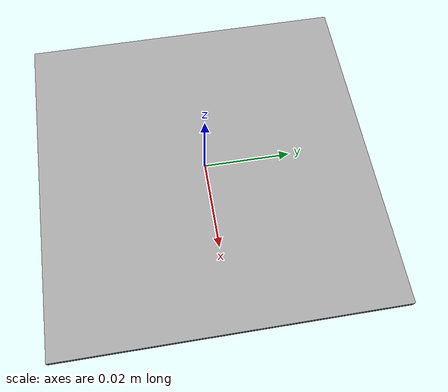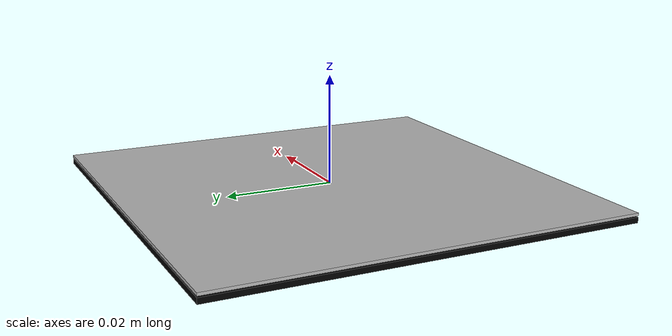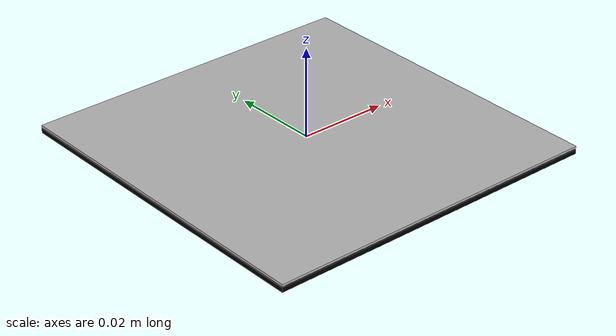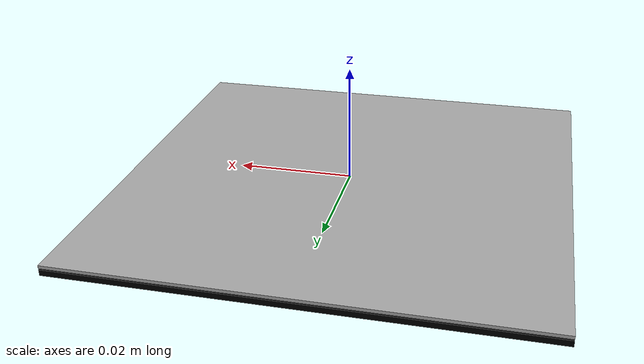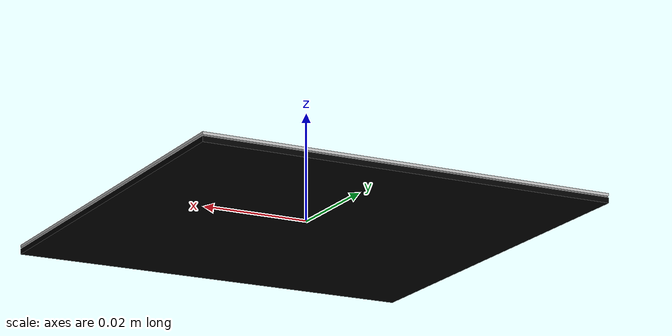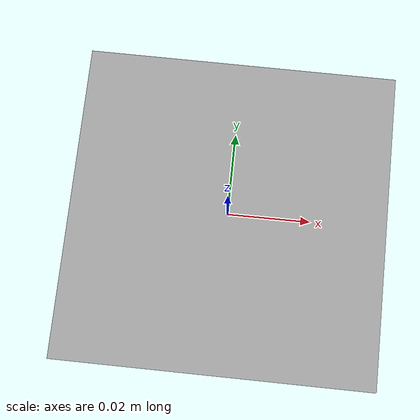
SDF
<?xml version='1.0'?>
<sdf version='1.6'>
    <model name='aruco_6X6_250_13'>
        <link name='tag'>
            <gravity>0</gravity>
            <inertial>
                <mass>0.001</mass>
                <inertia>
                    <ixx>1e-5</ixx><ixy>0</ixy><ixz>0</ixz>
                    <iyy>1e-5</iyy><iyz>0</iyz>
                    <izz>1e-5</izz>
                </inertia>
            </inertial>
            <visual name='front'>
                <pose>0 0 0 0 0 1.57075</pose>
                <geometry>
                    <box>
                        <size>0.07714285714285714 0.07714285714285714 0.0005</size>
                    </box>
                </geometry>
                <material>
                    <script>
                        <uri>model://aruco_6X6_250_13/materials/scripts</uri>
                        <uri>model://aruco_6X6_250_13/materials/textures</uri>
                        <name>aruco_6X6_250_13/Marker</name>
                    </script>
                </material>
            </visual>
            <visual name="back">
                <pose>0 0 -0.001 0 0 1.57075</pose>
                <geometry>
                    <box>
                        <size>0.07714285714285714 0.07714285714285714 0.001</size>
                    </box>
                </geometry>
                <material>
                    <ambient>0 0 0 1</ambient>
                    <diffuse>0 0 0 1</diffuse>
                </material>
            </visual>
        </link>
    </model>
</sdf>
